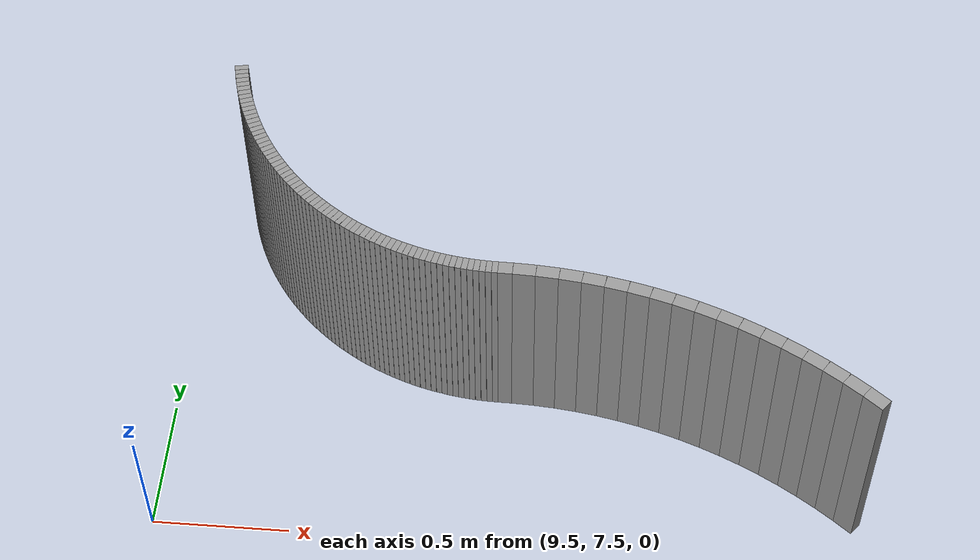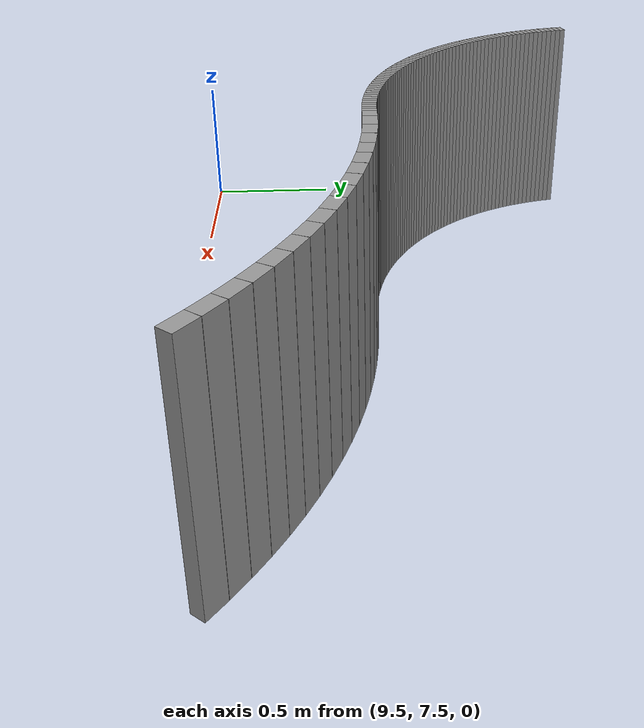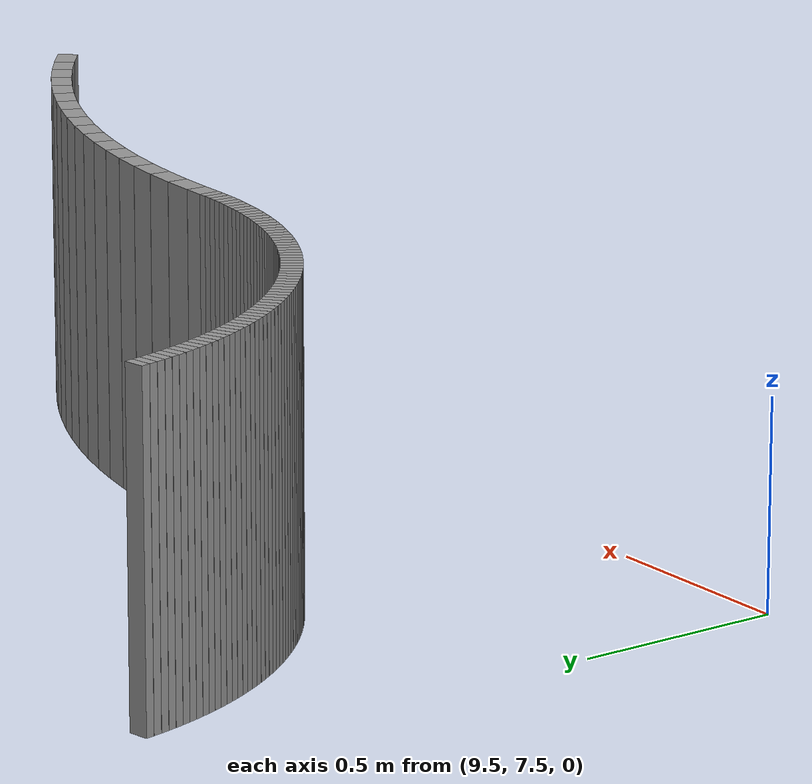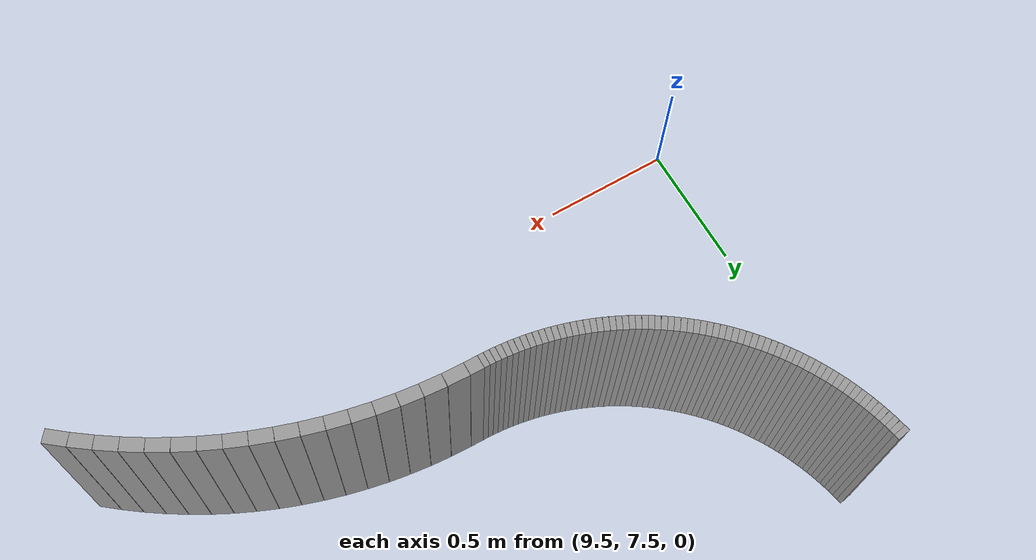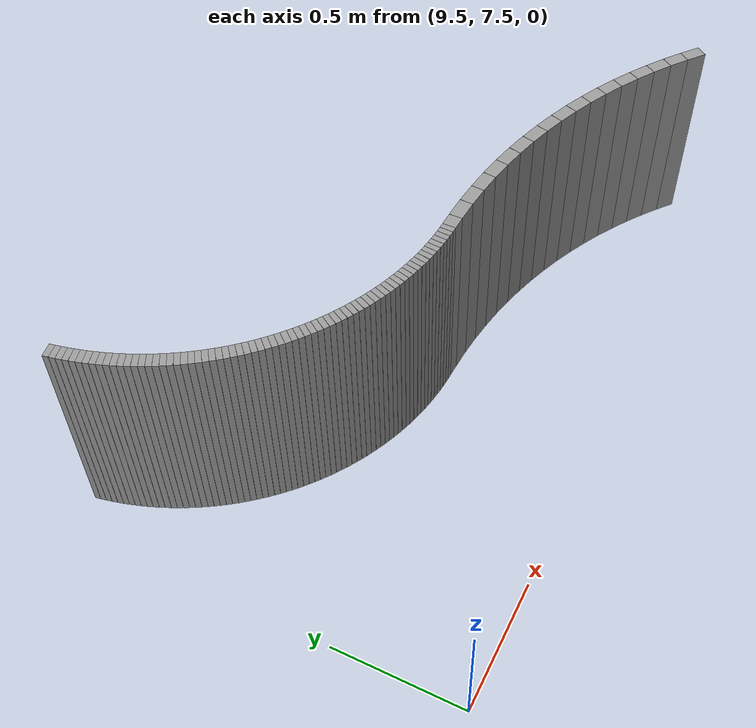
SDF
<sdf version="1.6">
 <model name="path_walls">
  <static>true</static>
  <model name="wall_right_120">
   <static>true</static>
   <pose>12.023175042588779 7.693194683425731 0.40 0 0 2.465553728133746</pose>
   <link name="wall_link">
    <visual name="wall_visual">
     <geometry><box><size>0.0825017934507149 0.05 0.8</size></box></geometry>
     <material><ambient>0.3 0.3 0.3 1</ambient><diffuse>0.6 0.6 0.6 1</diffuse></material>
    </visual>
    <collision name="wall_collision">
     <geometry><box><size>0.0825017934507149 0.05 0.8</size></box></geometry>
    </collision>
   </link>
  </model>
  <model name="wall_right_121">
   <static>true</static>
   <pose>11.957818199560503 7.743517027915231 0.40 0 0 2.5053207237488517</pose>
   <link name="wall_link">
    <visual name="wall_visual">
     <geometry><box><size>0.08250179345068452 0.05 0.8</size></box></geometry>
     <material><ambient>0.3 0.3 0.3 1</ambient><diffuse>0.6 0.6 0.6 1</diffuse></material>
    </visual>
    <collision name="wall_collision">
     <geometry><box><size>0.08250179345068452 0.05 0.8</size></box></geometry>
    </collision>
   </link>
  </model>
  <model name="wall_right_122">
   <static>true</static>
   <pose>11.890512386785137 7.7912012271031035 0.40 0 0 2.545087719363864</pose>
   <link name="wall_link">
    <visual name="wall_visual">
     <geometry><box><size>0.08250179345070106 0.05 0.8</size></box></geometry>
     <material><ambient>0.3 0.3 0.3 1</ambient><diffuse>0.6 0.6 0.6 1</diffuse></material>
    </visual>
    <collision name="wall_collision">
     <geometry><box><size>0.08250179345070106 0.05 0.8</size></box></geometry>
    </collision>
   </link>
  </model>
  <model name="wall_right_123">
   <static>true</static>
   <pose>11.82136402858707 7.836171882469172 0.40 0 0 2.5848547149789494</pose>
   <link name="wall_link">
    <visual name="wall_visual">
     <geometry><box><size>0.08250179345069344 0.05 0.8</size></box></geometry>
     <material><ambient>0.3 0.3 0.3 1</ambient><diffuse>0.6 0.6 0.6 1</diffuse></material>
    </visual>
    <collision name="wall_collision">
     <geometry><box><size>0.08250179345069344 0.05 0.8</size></box></geometry>
    </collision>
   </link>
  </model>
  <model name="wall_right_124">
   <static>true</static>
   <pose>11.750482462733737 7.878357886163791 0.40 0 0 2.624621710594005</pose>
   <link name="wall_link">
    <visual name="wall_visual">
     <geometry><box><size>0.08250179345070784 0.05 0.8</size></box></geometry>
     <material><ambient>0.3 0.3 0.3 1</ambient><diffuse>0.6 0.6 0.6 1</diffuse></material>
    </visual>
    <collision name="wall_collision">
     <geometry><box><size>0.08250179345070784 0.05 0.8</size></box></geometry>
    </collision>
   </link>
  </model>
  <model name="wall_right_125">
   <static>true</static>
   <pose>11.677979767550141 7.917692533443976 0.40 0 0 2.6643887062090825</pose>
   <link name="wall_link">
    <visual name="wall_visual">
     <geometry><box><size>0.08250179345068581 0.05 0.8</size></box></geometry>
     <material><ambient>0.3 0.3 0.3 1</ambient><diffuse>0.6 0.6 0.6 1</diffuse></material>
    </visual>
    <collision name="wall_collision">
     <geometry><box><size>0.08250179345068581 0.05 0.8</size></box></geometry>
    </collision>
   </link>
  </model>
  <model name="wall_right_126">
   <static>true</static>
   <pose>11.603970584699962 7.954113628147321 0.40 0 0 2.70415570182412</pose>
   <link name="wall_link">
    <visual name="wall_visual">
     <geometry><box><size>0.08250179345070074 0.05 0.8</size></box></geometry>
     <material><ambient>0.3 0.3 0.3 1</ambient><diffuse>0.6 0.6 0.6 1</diffuse></material>
    </visual>
    <collision name="wall_collision">
     <geometry><box><size>0.08250179345070074 0.05 0.8</size></box></geometry>
    </collision>
   </link>
  </model>
  <model name="wall_right_127">
   <static>true</static>
   <pose>11.528571937913528 7.987563581036917 0.40 0 0 2.743922697439188</pose>
   <link name="wall_link">
    <visual name="wall_visual">
     <geometry><box><size>0.0825017934506883 0.05 0.8</size></box></geometry>
     <material><ambient>0.3 0.3 0.3 1</ambient><diffuse>0.6 0.6 0.6 1</diffuse></material>
    </visual>
    <collision name="wall_collision">
     <geometry><box><size>0.0825017934506883 0.05 0.8</size></box></geometry>
    </collision>
   </link>
  </model>
  <model name="wall_right_128">
   <static>true</static>
   <pose>11.451903047949255 8.01798950086176 0.40 0 0 2.783689693054234</pose>
   <link name="wall_link">
    <visual name="wall_visual">
     <geometry><box><size>0.08250179345069675 0.05 0.8</size></box></geometry>
     <material><ambient>0.3 0.3 0.3 1</ambient><diffuse>0.6 0.6 0.6 1</diffuse></material>
    </visual>
    <collision name="wall_collision">
     <geometry><box><size>0.08250179345069675 0.05 0.8</size></box></geometry>
    </collision>
   </link>
  </model>
  <model name="wall_right_129">
   <static>true</static>
   <pose>11.374085144081107 8.0453432779887 0.40 0 0 2.823456688669296</pose>
   <link name="wall_link">
    <visual name="wall_visual">
     <geometry><box><size>0.0825017934507063 0.05 0.8</size></box></geometry>
     <material><ambient>0.3 0.3 0.3 1</ambient><diffuse>0.6 0.6 0.6 1</diffuse></material>
    </visual>
    <collision name="wall_collision">
     <geometry><box><size>0.0825017934507063 0.05 0.8</size></box></geometry>
    </collision>
   </link>
  </model>
  <model name="wall_right_130">
   <static>true</static>
   <pose>11.295241272410218 8.069581660473652 0.40 0 0 2.8632236842844057</pose>
   <link name="wall_link">
    <visual name="wall_visual">
     <geometry><box><size>0.08250179345069364 0.05 0.8</size></box></geometry>
     <material><ambient>0.3 0.3 0.3 1</ambient><diffuse>0.6 0.6 0.6 1</diffuse></material>
    </visual>
    <collision name="wall_collision">
     <geometry><box><size>0.08250179345069364 0.05 0.8</size></box></geometry>
    </collision>
   </link>
  </model>
  <model name="wall_right_131">
   <static>true</static>
   <pose>11.2154961013037 8.09066632245182 0.40 0 0 2.9029906798994016</pose>
   <link name="wall_link">
    <visual name="wall_visual">
     <geometry><box><size>0.08250179345069251 0.05 0.8</size></box></geometry>
     <material><ambient>0.3 0.3 0.3 1</ambient><diffuse>0.6 0.6 0.6 1</diffuse></material>
    </visual>
    <collision name="wall_collision">
     <geometry><box><size>0.08250179345069251 0.05 0.8</size></box></geometry>
    </collision>
   </link>
  </model>
  <model name="wall_right_132">
   <static>true</static>
   <pose>11.134975724268319 8.108563924738768 0.40 0 0 2.9427576755144966</pose>
   <link name="wall_link">
    <visual name="wall_visual">
     <geometry><box><size>0.08250179345069578 0.05 0.8</size></box></geometry>
     <material><ambient>0.3 0.3 0.3 1</ambient><diffuse>0.6 0.6 0.6 1</diffuse></material>
    </visual>
    <collision name="wall_collision">
     <geometry><box><size>0.08250179345069578 0.05 0.8</size></box></geometry>
    </collision>
   </link>
  </model>
  <model name="wall_right_133">
   <static>true</static>
   <pose>11.053807460570752 8.123246167546505 0.40 0 0 2.9825246711295414</pose>
   <link name="wall_link">
    <visual name="wall_visual">
     <geometry><box><size>0.08250179345071283 0.05 0.8</size></box></geometry>
     <material><ambient>0.3 0.3 0.3 1</ambient><diffuse>0.6 0.6 0.6 1</diffuse></material>
    </visual>
    <collision name="wall_collision">
     <geometry><box><size>0.08250179345071283 0.05 0.8</size></box></geometry>
    </collision>
   </link>
  </model>
  <model name="wall_right_134">
   <static>true</static>
   <pose>10.972119653919684 8.134689835231283 0.40 0 0 3.0222916667446276</pose>
   <link name="wall_link">
    <visual name="wall_visual">
     <geometry><box><size>0.08250179345068052 0.05 0.8</size></box></geometry>
     <material><ambient>0.3 0.3 0.3 1</ambient><diffuse>0.6 0.6 0.6 1</diffuse></material>
    </visual>
    <collision name="wall_collision">
     <geometry><box><size>0.08250179345068052 0.05 0.8</size></box></geometry>
    </collision>
   </link>
  </model>
  <model name="wall_right_135">
   <static>true</static>
   <pose>10.890041469527983 8.142876833002301 0.40 0 0 3.0620586623596813</pose>
   <link name="wall_link">
    <visual name="wall_visual">
     <geometry><box><size>0.08250179345069969 0.05 0.8</size></box></geometry>
     <material><ambient>0.3 0.3 0.3 1</ambient><diffuse>0.6 0.6 0.6 1</diffuse></material>
    </visual>
    <collision name="wall_collision">
     <geometry><box><size>0.08250179345069969 0.05 0.8</size></box></geometry>
    </collision>
   </link>
  </model>
  <model name="wall_right_136">
   <static>true</static>
   <pose>10.807702689875953 8.147794215533287 0.40 0 0 3.1018256579747105</pose>
   <link name="wall_link">
    <visual name="wall_visual">
     <geometry><box><size>0.08250179345068913 0.05 0.8</size></box></geometry>
     <material><ambient>0.3 0.3 0.3 1</ambient><diffuse>0.6 0.6 0.6 1</diffuse></material>
    </visual>
    <collision name="wall_collision">
     <geometry><box><size>0.08250179345068913 0.05 0.8</size></box></geometry>
    </collision>
   </link>
  </model>
  <model name="wall_right_137">
   <static>true</static>
   <pose>10.74051535586154 8.14986042202026 0.40 0 0 3.1251817213686626</pose>
   <link name="wall_link">
    <visual name="wall_visual">
     <geometry><box><size>0.0519450954604996 0.05 0.8</size></box></geometry>
     <material><ambient>0.3 0.3 0.3 1</ambient><diffuse>0.6 0.6 0.6 1</diffuse></material>
    </visual>
    <collision name="wall_collision">
     <geometry><box><size>0.0519450954604996 0.05 0.8</size></box></geometry>
    </collision>
   </link>
  </model>
  <model name="wall_right_138">
   <static>true</static>
   <pose>10.703861214041797 8.150499121604343 0.40 0 0 3.12170915578228</pose>
   <link name="wall_link">
    <visual name="wall_visual">
     <geometry><box><size>0.021374407998839783 0.05 0.8</size></box></geometry>
     <material><ambient>0.3 0.3 0.3 1</ambient><diffuse>0.6 0.6 0.6 1</diffuse></material>
    </visual>
    <collision name="wall_collision">
     <geometry><box><size>0.021374407998839783 0.05 0.8</size></box></geometry>
    </collision>
   </link>
  </model>
  <model name="wall_right_139">
   <static>true</static>
   <pose>10.682497367918135 8.151136492587021 0.40 0 0 3.1018256579747923</pose>
   <link name="wall_link">
    <visual name="wall_visual">
     <geometry><box><size>0.021374407998854546 0.05 0.8</size></box></geometry>
     <material><ambient>0.3 0.3 0.3 1</ambient><diffuse>0.6 0.6 0.6 1</diffuse></material>
    </visual>
    <collision name="wall_collision">
     <geometry><box><size>0.021374407998854546 0.05 0.8</size></box></geometry>
    </collision>
   </link>
  </model>
  <model name="wall_right_140">
   <static>true</static>
   <pose>10.661150417120353 8.152198497578308 0.40 0 0 3.08194216016719</pose>
   <link name="wall_link">
    <visual name="wall_visual">
     <geometry><box><size>0.021374407998811257 0.05 0.8</size></box></geometry>
     <material><ambient>0.3 0.3 0.3 1</ambient><diffuse>0.6 0.6 0.6 1</diffuse></material>
    </visual>
    <collision name="wall_collision">
     <geometry><box><size>0.021374407998811257 0.05 0.8</size></box></geometry>
    </collision>
   </link>
  </model>
  <model name="wall_right_141">
   <static>true</static>
   <pose>10.63982880096177 8.153684716724664 0.40 0 0 3.0620586623596386</pose>
   <link name="wall_link">
    <visual name="wall_visual">
     <geometry><box><size>0.021374407998885216 0.05 0.8</size></box></geometry>
     <material><ambient>0.3 0.3 0.3 1</ambient><diffuse>0.6 0.6 0.6 1</diffuse></material>
    </visual>
    <collision name="wall_collision">
     <geometry><box><size>0.021374407998885216 0.05 0.8</size></box></geometry>
    </collision>
   </link>
  </model>
  <model name="wall_right_142">
   <static>true</static>
   <pose>10.618540948739929 8.155594562463527 0.40 0 0 3.042175164552154</pose>
   <link name="wall_link">
    <visual name="wall_visual">
     <geometry><box><size>0.021374407998814873 0.05 0.8</size></box></geometry>
     <material><ambient>0.3 0.3 0.3 1</ambient><diffuse>0.6 0.6 0.6 1</diffuse></material>
    </visual>
    <collision name="wall_collision">
     <geometry><box><size>0.021374407998814873 0.05 0.8</size></box></geometry>
    </collision>
   </link>
  </model>
  <model name="wall_right_143">
   <static>true</static>
   <pose>10.597295276404125 8.157927279755604 0.40 0 0 3.0222916667446</pose>
   <link name="wall_link">
    <visual name="wall_visual">
     <geometry><box><size>0.02137440799888237 0.05 0.8</size></box></geometry>
     <material><ambient>0.3 0.3 0.3 1</ambient><diffuse>0.6 0.6 0.6 1</diffuse></material>
    </visual>
    <collision name="wall_collision">
     <geometry><box><size>0.02137440799888237 0.05 0.8</size></box></geometry>
    </collision>
   </link>
  </model>
  <model name="wall_right_144">
   <static>true</static>
   <pose>10.576100183228228 8.16068194638337 0.40 0 0 3.0024081689371256</pose>
   <link name="wall_link">
    <visual name="wall_visual">
     <geometry><box><size>0.021374407998817777 0.05 0.8</size></box></geometry>
     <material><ambient>0.3 0.3 0.3 1</ambient><diffuse>0.6 0.6 0.6 1</diffuse></material>
    </visual>
    <collision name="wall_collision">
     <geometry><box><size>0.021374407998817777 0.05 0.8</size></box></geometry>
    </collision>
   </link>
  </model>
  <model name="wall_right_145">
   <static>true</static>
   <pose>10.554964048490124 8.163857473315652 0.40 0 0 2.9825246711295326</pose>
   <link name="wall_link">
    <visual name="wall_visual">
     <geometry><box><size>0.021374407998867813 0.05 0.8</size></box></geometry>
     <material><ambient>0.3 0.3 0.3 1</ambient><diffuse>0.6 0.6 0.6 1</diffuse></material>
    </visual>
    <collision name="wall_collision">
     <geometry><box><size>0.021374407998867813 0.05 0.8</size></box></geometry>
    </collision>
   </link>
  </model>
  <model name="wall_right_146">
   <static>true</static>
   <pose>10.533895228159025 8.167452605138172 0.40 0 0 2.96264117332208</pose>
   <link name="wall_link">
    <visual name="wall_visual">
     <geometry><box><size>0.021374407998845074 0.05 0.8</size></box></geometry>
     <material><ambient>0.3 0.3 0.3 1</ambient><diffuse>0.6 0.6 0.6 1</diffuse></material>
    </visual>
    <collision name="wall_collision">
     <geometry><box><size>0.021374407998845074 0.05 0.8</size></box></geometry>
    </collision>
   </link>
  </model>
  <model name="wall_right_147">
   <static>true</static>
   <pose>10.512902051592086 8.17146592054986 0.40 0 0 2.9427576755144305</pose>
   <link name="wall_link">
    <visual name="wall_visual">
     <geometry><box><size>0.02137440799882313 0.05 0.8</size></box></geometry>
     <material><ambient>0.3 0.3 0.3 1</ambient><diffuse>0.6 0.6 0.6 1</diffuse></material>
    </visual>
    <collision name="wall_collision">
     <geometry><box><size>0.02137440799882313 0.05 0.8</size></box></geometry>
    </collision>
   </link>
  </model>
  <model name="wall_right_148">
   <static>true</static>
   <pose>10.49199281824135 8.175895832924759 0.40 0 0 2.9228741777069884</pose>
   <link name="wall_link">
    <visual name="wall_visual">
     <geometry><box><size>0.021374407998859198 0.05 0.8</size></box></geometry>
     <material><ambient>0.3 0.3 0.3 1</ambient><diffuse>0.6 0.6 0.6 1</diffuse></material>
    </visual>
    <collision name="wall_collision">
     <geometry><box><size>0.021374407998859198 0.05 0.8</size></box></geometry>
    </collision>
   </link>
  </model>
  <model name="wall_right_149">
   <static>true</static>
   <pose>10.471175794372748 8.180740590939273 0.40 0 0 2.9029906798993848</pose>
   <link name="wall_link">
    <visual name="wall_visual">
     <geometry><box><size>0.02137440799884378 0.05 0.8</size></box></geometry>
     <material><ambient>0.3 0.3 0.3 1</ambient><diffuse>0.6 0.6 0.6 1</diffuse></material>
    </visual>
    <collision name="wall_collision">
     <geometry><box><size>0.02137440799884378 0.05 0.8</size></box></geometry>
    </collision>
   </link>
  </model>
  <model name="wall_right_150">
   <static>true</static>
   <pose>10.450459209798083 8.185998279264542 0.40 0 0 2.883107182091873</pose>
   <link name="wall_link">
    <visual name="wall_visual">
     <geometry><box><size>0.021374407998843697 0.05 0.8</size></box></geometry>
     <material><ambient>0.3 0.3 0.3 1</ambient><diffuse>0.6 0.6 0.6 1</diffuse></material>
    </visual>
    <collision name="wall_collision">
     <geometry><box><size>0.021374407998843697 0.05 0.8</size></box></geometry>
    </collision>
   </link>
  </model>
  <model name="wall_right_151">
   <static>true</static>
   <pose>10.429851254621406 8.191666819323643 0.40 0 0 2.863223684284431</pose>
   <link name="wall_link">
    <visual name="wall_visual">
     <geometry><box><size>0.021374407998875994 0.05 0.8</size></box></geometry>
     <material><ambient>0.3 0.3 0.3 1</ambient><diffuse>0.6 0.6 0.6 1</diffuse></material>
    </visual>
    <collision name="wall_collision">
     <geometry><box><size>0.021374407998875994 0.05 0.8</size></box></geometry>
    </collision>
   </link>
  </model>
  <model name="wall_right_152">
   <static>true</static>
   <pose>10.409360076001228 8.19774397011334 0.40 0 0 2.843340186476775</pose>
   <link name="wall_link">
    <visual name="wall_visual">
     <geometry><box><size>0.021374407998803992 0.05 0.8</size></box></geometry>
     <material><ambient>0.3 0.3 0.3 1</ambient><diffuse>0.6 0.6 0.6 1</diffuse></material>
    </visual>
    <collision name="wall_collision">
     <geometry><box><size>0.021374407998803992 0.05 0.8</size></box></geometry>
    </collision>
   </link>
  </model>
  <model name="wall_right_153">
   <static>true</static>
   <pose>10.388993774929517 8.204227329090047 0.40 0 0 2.823456688669327</pose>
   <link name="wall_link">
    <visual name="wall_visual">
     <geometry><box><size>0.021374407998861554 0.05 0.8</size></box></geometry>
     <material><ambient>0.3 0.3 0.3 1</ambient><diffuse>0.6 0.6 0.6 1</diffuse></material>
    </visual>
    <collision name="wall_collision">
     <geometry><box><size>0.021374407998861554 0.05 0.8</size></box></geometry>
    </collision>
   </link>
  </model>
  <model name="wall_right_154">
   <static>true</static>
   <pose>10.368760403029071 8.211114333119653 0.40 0 0 2.8035731908617976</pose>
   <link name="wall_link">
    <visual name="wall_visual">
     <geometry><box><size>0.02137440799886103 0.05 0.8</size></box></geometry>
     <material><ambient>0.3 0.3 0.3 1</ambient><diffuse>0.6 0.6 0.6 1</diffuse></material>
    </visual>
    <collision name="wall_collision">
     <geometry><box><size>0.02137440799886103 0.05 0.8</size></box></geometry>
    </collision>
   </link>
  </model>
  <model name="wall_right_155">
   <static>true</static>
   <pose>10.348667959370477 8.218402259490807 0.40 0 0 2.783689693054252</pose>
   <link name="wall_link">
    <visual name="wall_visual">
     <geometry><box><size>0.02137440799883912 0.05 0.8</size></box></geometry>
     <material><ambient>0.3 0.3 0.3 1</ambient><diffuse>0.6 0.6 0.6 1</diffuse></material>
    </visual>
    <collision name="wall_collision">
     <geometry><box><size>0.02137440799883912 0.05 0.8</size></box></geometry>
    </collision>
   </link>
  </model>
  <model name="wall_right_156">
   <static>true</static>
   <pose>10.328724387309649 8.226088226991347 0.40 0 0 2.7638061952467075</pose>
   <link name="wall_link">
    <visual name="wall_visual">
     <geometry><box><size>0.021374407998843728 0.05 0.8</size></box></geometry>
     <material><ambient>0.3 0.3 0.3 1</ambient><diffuse>0.6 0.6 0.6 1</diffuse></material>
    </visual>
    <collision name="wall_collision">
     <geometry><box><size>0.021374407998843728 0.05 0.8</size></box></geometry>
    </collision>
   </link>
  </model>
  <model name="wall_right_157">
   <static>true</static>
   <pose>10.308937571347526 8.23416919704735 0.40 0 0 2.743922697439185</pose>
   <link name="wall_link">
    <visual name="wall_visual">
     <geometry><box><size>0.02137440799884632 0.05 0.8</size></box></geometry>
     <material><ambient>0.3 0.3 0.3 1</ambient><diffuse>0.6 0.6 0.6 1</diffuse></material>
    </visual>
    <collision name="wall_collision">
     <geometry><box><size>0.02137440799884632 0.05 0.8</size></box></geometry>
    </collision>
   </link>
  </model>
  <model name="wall_right_158">
   <static>true</static>
   <pose>10.289315334013029 8.2426419749244 0.40 0 0 2.724039199631677</pose>
   <link name="wall_link">
    <visual name="wall_visual">
     <geometry><box><size>0.02137440799885527 0.05 0.8</size></box></geometry>
     <material><ambient>0.3 0.3 0.3 1</ambient><diffuse>0.6 0.6 0.6 1</diffuse></material>
    </visual>
    <collision name="wall_collision">
     <geometry><box><size>0.02137440799885527 0.05 0.8</size></box></geometry>
    </collision>
   </link>
  </model>
  <model name="wall_right_159">
   <static>true</static>
   <pose>10.269865432770496 8.251503210990588 0.40 0 0 2.7041557018241087</pose>
   <link name="wall_link">
    <visual name="wall_visual">
     <geometry><box><size>0.021374407998837153 0.05 0.8</size></box></geometry>
     <material><ambient>0.3 0.3 0.3 1</ambient><diffuse>0.6 0.6 0.6 1</diffuse></material>
    </visual>
    <collision name="wall_collision">
     <geometry><box><size>0.021374407998837153 0.05 0.8</size></box></geometry>
    </collision>
   </link>
  </model>
  <model name="wall_right_160">
   <static>true</static>
   <pose>10.250595556952831 8.260749402040776 0.40 0 0 2.684272204016641</pose>
   <link name="wall_link">
    <visual name="wall_visual">
     <geometry><box><size>0.021374407998848967 0.05 0.8</size></box></geometry>
     <material><ambient>0.3 0.3 0.3 1</ambient><diffuse>0.6 0.6 0.6 1</diffuse></material>
    </visual>
    <collision name="wall_collision">
     <geometry><box><size>0.021374407998848967 0.05 0.8</size></box></geometry>
    </collision>
   </link>
  </model>
  <model name="wall_right_161">
   <static>true</static>
   <pose>10.231513324721593 8.270376892681544 0.40 0 0 2.6643887062089964</pose>
   <link name="wall_link">
    <visual name="wall_visual">
     <geometry><box><size>0.021374407998841334 0.05 0.8</size></box></geometry>
     <material><ambient>0.3 0.3 0.3 1</ambient><diffuse>0.6 0.6 0.6 1</diffuse></material>
    </visual>
    <collision name="wall_collision">
     <geometry><box><size>0.021374407998841334 0.05 0.8</size></box></geometry>
    </collision>
   </link>
  </model>
  <model name="wall_right_162">
   <static>true</static>
   <pose>10.212626280055254 8.280381876776314 0.40 0 0 2.644505208401548</pose>
   <link name="wall_link">
    <visual name="wall_visual">
     <geometry><box><size>0.021374407998848453 0.05 0.8</size></box></geometry>
     <material><ambient>0.3 0.3 0.3 1</ambient><diffuse>0.6 0.6 0.6 1</diffuse></material>
    </visual>
    <collision name="wall_collision">
     <geometry><box><size>0.021374407998848453 0.05 0.8</size></box></geometry>
    </collision>
   </link>
  </model>
  <model name="wall_right_163">
   <static>true</static>
   <pose>10.19394188976673 8.290760398950074 0.40 0 0 2.624621710593953</pose>
   <link name="wall_link">
    <visual name="wall_visual">
     <geometry><box><size>0.02137440799884935 0.05 0.8</size></box></geometry>
     <material><ambient>0.3 0.3 0.3 1</ambient><diffuse>0.6 0.6 0.6 1</diffuse></material>
    </visual>
    <collision name="wall_collision">
     <geometry><box><size>0.02137440799884935 0.05 0.8</size></box></geometry>
    </collision>
   </link>
  </model>
  <model name="wall_right_164">
   <static>true</static>
   <pose>10.17546754055147 8.301508356153095 0.40 0 0 2.604738212786524</pose>
   <link name="wall_link">
    <visual name="wall_visual">
     <geometry><box><size>0.02137440799885834 0.05 0.8</size></box></geometry>
     <material><ambient>0.3 0.3 0.3 1</ambient><diffuse>0.6 0.6 0.6 1</diffuse></material>
    </visual>
    <collision name="wall_collision">
     <geometry><box><size>0.02137440799885834 0.05 0.8</size></box></geometry>
    </collision>
   </link>
  </model>
  <model name="wall_right_165">
   <static>true</static>
   <pose>10.157210536067199 8.31262149928303 0.40 0 0 2.5848547149790226</pose>
   <link name="wall_link">
    <visual name="wall_visual">
     <geometry><box><size>0.02137440799884019 0.05 0.8</size></box></geometry>
     <material><ambient>0.3 0.3 0.3 1</ambient><diffuse>0.6 0.6 0.6 1</diffuse></material>
    </visual>
    <collision name="wall_collision">
     <geometry><box><size>0.02137440799884019 0.05 0.8</size></box></geometry>
    </collision>
   </link>
  </model>
  <model name="wall_right_166">
   <static>true</static>
   <pose>10.139178094046468 8.32409543486476 0.40 0 0 2.5649712171713364</pose>
   <link name="wall_link">
    <visual name="wall_visual">
     <geometry><box><size>0.02137440799883817 0.05 0.8</size></box></geometry>
     <material><ambient>0.3 0.3 0.3 1</ambient><diffuse>0.6 0.6 0.6 1</diffuse></material>
    </visual>
    <collision name="wall_collision">
     <geometry><box><size>0.02137440799883817 0.05 0.8</size></box></geometry>
    </collision>
   </link>
  </model>
  <model name="wall_right_167">
   <static>true</static>
   <pose>10.121377343443188 8.335925626787324 0.40 0 0 2.5450877193638313</pose>
   <link name="wall_link">
    <visual name="wall_visual">
     <geometry><box><size>0.021374407998852818 0.05 0.8</size></box></geometry>
     <material><ambient>0.3 0.3 0.3 1</ambient><diffuse>0.6 0.6 0.6 1</diffuse></material>
    </visual>
    <collision name="wall_collision">
     <geometry><box><size>0.021374407998852818 0.05 0.8</size></box></geometry>
    </collision>
   </link>
  </model>
  <model name="wall_right_168">
   <static>true</static>
   <pose>10.103815321614288 8.348107398097206 0.40 0 0 2.5252042215563955</pose>
   <link name="wall_link">
    <visual name="wall_visual">
     <geometry><box><size>0.021374407998839374 0.05 0.8</size></box></geometry>
     <material><ambient>0.3 0.3 0.3 1</ambient><diffuse>0.6 0.6 0.6 1</diffuse></material>
    </visual>
    <collision name="wall_collision">
     <geometry><box><size>0.021374407998839374 0.05 0.8</size></box></geometry>
    </collision>
   </link>
  </model>
  <model name="wall_right_169">
   <static>true</static>
   <pose>10.086498971537555 8.36063593284733 0.40 0 0 2.5053207237488873</pose>
   <link name="wall_link">
    <visual name="wall_visual">
     <geometry><box><size>0.02137440799886004 0.05 0.8</size></box></geometry>
     <material><ambient>0.3 0.3 0.3 1</ambient><diffuse>0.6 0.6 0.6 1</diffuse></material>
    </visual>
    <collision name="wall_collision">
     <geometry><box><size>0.02137440799886004 0.05 0.8</size></box></geometry>
    </collision>
   </link>
  </model>
  <model name="wall_right_170">
   <static>true</static>
   <pose>10.069435139066801 8.373506278001008 0.40 0 0 2.485437225941187</pose>
   <link name="wall_link">
    <visual name="wall_visual">
     <geometry><box><size>0.021374407998820465 0.05 0.8</size></box></geometry>
     <material><ambient>0.3 0.3 0.3 1</ambient><diffuse>0.6 0.6 0.6 1</diffuse></material>
    </visual>
    <collision name="wall_collision">
     <geometry><box><size>0.021374407998820465 0.05 0.8</size></box></geometry>
    </collision>
   </link>
  </model>
  <model name="wall_right_171">
   <static>true</static>
   <pose>10.052630570225393 8.386713345390069 0.40 0 0 2.465553728133885</pose>
   <link name="wall_link">
    <visual name="wall_visual">
     <geometry><box><size>0.02137440799886468 0.05 0.8</size></box></geometry>
     <material><ambient>0.3 0.3 0.3 1</ambient><diffuse>0.6 0.6 0.6 1</diffuse></material>
    </visual>
    <collision name="wall_collision">
     <geometry><box><size>0.02137440799886468 0.05 0.8</size></box></geometry>
    </collision>
   </link>
  </model>
  <model name="wall_right_172">
   <static>true</static>
   <pose>10.036091908539285 8.400251913726432 0.40 0 0 2.4456702303261606</pose>
   <link name="wall_link">
    <visual name="wall_visual">
     <geometry><box><size>0.021374407998870415 0.05 0.8</size></box></geometry>
     <material><ambient>0.3 0.3 0.3 1</ambient><diffuse>0.6 0.6 0.6 1</diffuse></material>
    </visual>
    <collision name="wall_collision">
     <geometry><box><size>0.021374407998870415 0.05 0.8</size></box></geometry>
    </collision>
   </link>
  </model>
  <model name="wall_right_173">
   <static>true</static>
   <pose>10.019825692410642 8.414116630666232 0.40 0 0 2.4257867325187186</pose>
   <link name="wall_link">
    <visual name="wall_visual">
     <geometry><box><size>0.021374407998799225 0.05 0.8</size></box></geometry>
     <material><ambient>0.3 0.3 0.3 1</ambient><diffuse>0.6 0.6 0.6 1</diffuse></material>
    </visual>
    <collision name="wall_collision">
     <geometry><box><size>0.021374407998799225 0.05 0.8</size></box></geometry>
    </collision>
   </link>
  </model>
  <model name="wall_right_174">
   <static>true</static>
   <pose>10.003838352532794 8.428302014925926 0.40 0 0 2.4059032347111073</pose>
   <link name="wall_link">
    <visual name="wall_visual">
     <geometry><box><size>0.02137440799889348 0.05 0.8</size></box></geometry>
     <material><ambient>0.3 0.3 0.3 1</ambient><diffuse>0.6 0.6 0.6 1</diffuse></material>
    </visual>
    <collision name="wall_collision">
     <geometry><box><size>0.02137440799889348 0.05 0.8</size></box></geometry>
    </collision>
   </link>
  </model>
  <model name="wall_right_175">
   <static>true</static>
   <pose>9.988136209348038 8.442802458449174 0.40 0 0 2.386019736903734</pose>
   <link name="wall_link">
    <visual name="wall_visual">
     <geometry><box><size>0.021374407998823754 0.05 0.8</size></box></geometry>
     <material><ambient>0.3 0.3 0.3 1</ambient><diffuse>0.6 0.6 0.6 1</diffuse></material>
    </visual>
    <collision name="wall_collision">
     <geometry><box><size>0.021374407998823754 0.05 0.8</size></box></geometry>
    </collision>
   </link>
  </model>
  <model name="wall_right_176">
   <static>true</static>
   <pose>9.972725470548907 8.457612228623944 0.40 0 0 2.3661362390961247</pose>
   <link name="wall_link">
    <visual name="wall_visual">
     <geometry><box><size>0.021374407998847423 0.05 0.8</size></box></geometry>
     <material><ambient>0.3 0.3 0.3 1</ambient><diffuse>0.6 0.6 0.6 1</diffuse></material>
    </visual>
    <collision name="wall_collision">
     <geometry><box><size>0.021374407998847423 0.05 0.8</size></box></geometry>
    </collision>
   </link>
  </model>
  <model name="wall_right_177">
   <static>true</static>
   <pose>9.957612228623944 8.472725470548909 0.40 0 0 2.3462527412884464</pose>
   <link name="wall_link">
    <visual name="wall_visual">
     <geometry><box><size>0.021374407998844935 0.05 0.8</size></box></geometry>
     <material><ambient>0.3 0.3 0.3 1</ambient><diffuse>0.6 0.6 0.6 1</diffuse></material>
    </visual>
    <collision name="wall_collision">
     <geometry><box><size>0.021374407998844935 0.05 0.8</size></box></geometry>
    </collision>
   </link>
  </model>
  <model name="wall_right_178">
   <static>true</static>
   <pose>9.942802458449176 8.488136209348038 0.40 0 0 2.3263692434810697</pose>
   <link name="wall_link">
    <visual name="wall_visual">
     <geometry><box><size>0.02137440799882117 0.05 0.8</size></box></geometry>
     <material><ambient>0.3 0.3 0.3 1</ambient><diffuse>0.6 0.6 0.6 1</diffuse></material>
    </visual>
    <collision name="wall_collision">
     <geometry><box><size>0.02137440799882117 0.05 0.8</size></box></geometry>
    </collision>
   </link>
  </model>
  <model name="wall_right_179">
   <static>true</static>
   <pose>9.928302014925933 8.503838352532787 0.40 0 0 2.306485745673609</pose>
   <link name="wall_link">
    <visual name="wall_visual">
     <geometry><box><size>0.021374407998879616 0.05 0.8</size></box></geometry>
     <material><ambient>0.3 0.3 0.3 1</ambient><diffuse>0.6 0.6 0.6 1</diffuse></material>
    </visual>
    <collision name="wall_collision">
     <geometry><box><size>0.021374407998879616 0.05 0.8</size></box></geometry>
    </collision>
   </link>
  </model>
  <model name="wall_right_180">
   <static>true</static>
   <pose>9.91411663066623 8.519825692410645 0.40 0 0 2.286602247865985</pose>
   <link name="wall_link">
    <visual name="wall_visual">
     <geometry><box><size>0.021374407998839495 0.05 0.8</size></box></geometry>
     <material><ambient>0.3 0.3 0.3 1</ambient><diffuse>0.6 0.6 0.6 1</diffuse></material>
    </visual>
    <collision name="wall_collision">
     <geometry><box><size>0.021374407998839495 0.05 0.8</size></box></geometry>
    </collision>
   </link>
  </model>
  <model name="wall_right_181">
   <static>true</static>
   <pose>9.900251913726418 8.536091908539303 0.40 0 0 2.2667187500584016</pose>
   <link name="wall_link">
    <visual name="wall_visual">
     <geometry><box><size>0.02137440799886814 0.05 0.8</size></box></geometry>
     <material><ambient>0.3 0.3 0.3 1</ambient><diffuse>0.6 0.6 0.6 1</diffuse></material>
    </visual>
    <collision name="wall_collision">
     <geometry><box><size>0.02137440799886814 0.05 0.8</size></box></geometry>
    </collision>
   </link>
  </model>
  <model name="wall_right_182">
   <static>true</static>
   <pose>9.88671334539007 8.55263057022539 0.40 0 0 2.2468352522509507</pose>
   <link name="wall_link">
    <visual name="wall_visual">
     <geometry><box><size>0.021374407998812527 0.05 0.8</size></box></geometry>
     <material><ambient>0.3 0.3 0.3 1</ambient><diffuse>0.6 0.6 0.6 1</diffuse></material>
    </visual>
    <collision name="wall_collision">
     <geometry><box><size>0.021374407998812527 0.05 0.8</size></box></geometry>
    </collision>
   </link>
  </model>
  <model name="wall_right_183">
   <static>true</static>
   <pose>9.87350627800102 8.569435139066783 0.40 0 0 2.226951754443391</pose>
   <link name="wall_link">
    <visual name="wall_visual">
     <geometry><box><size>0.021374407998841043 0.05 0.8</size></box></geometry>
     <material><ambient>0.3 0.3 0.3 1</ambient><diffuse>0.6 0.6 0.6 1</diffuse></material>
    </visual>
    <collision name="wall_collision">
     <geometry><box><size>0.021374407998841043 0.05 0.8</size></box></geometry>
    </collision>
   </link>
  </model>
  <model name="wall_right_184">
   <static>true</static>
   <pose>9.860635932847334 8.586498971537551 0.40 0 0 2.20706825663589</pose>
   <link name="wall_link">
    <visual name="wall_visual">
     <geometry><box><size>0.021374407998872462 0.05 0.8</size></box></geometry>
     <material><ambient>0.3 0.3 0.3 1</ambient><diffuse>0.6 0.6 0.6 1</diffuse></material>
    </visual>
    <collision name="wall_collision">
     <geometry><box><size>0.021374407998872462 0.05 0.8</size></box></geometry>
    </collision>
   </link>
  </model>
  <model name="wall_right_185">
   <static>true</static>
   <pose>9.848107398097198 8.603815321614295 0.40 0 0 2.1871847588282773</pose>
   <link name="wall_link">
    <visual name="wall_visual">
     <geometry><box><size>0.02137440799885218 0.05 0.8</size></box></geometry>
     <material><ambient>0.3 0.3 0.3 1</ambient><diffuse>0.6 0.6 0.6 1</diffuse></material>
    </visual>
    <collision name="wall_collision">
     <geometry><box><size>0.02137440799885218 0.05 0.8</size></box></geometry>
    </collision>
   </link>
  </model>
  <model name="wall_right_186">
   <static>true</static>
   <pose>9.835925626787322 8.621377343443193 0.40 0 0 2.1673012610207976</pose>
   <link name="wall_link">
    <visual name="wall_visual">
     <geometry><box><size>0.021374407998832605 0.05 0.8</size></box></geometry>
     <material><ambient>0.3 0.3 0.3 1</ambient><diffuse>0.6 0.6 0.6 1</diffuse></material>
    </visual>
    <collision name="wall_collision">
     <geometry><box><size>0.021374407998832605 0.05 0.8</size></box></geometry>
    </collision>
   </link>
  </model>
  <model name="wall_right_187">
   <static>true</static>
   <pose>9.824095434864766 8.639178094046459 0.40 0 0 2.1474177632133227</pose>
   <link name="wall_link">
    <visual name="wall_visual">
     <geometry><box><size>0.021374407998822904 0.05 0.8</size></box></geometry>
     <material><ambient>0.3 0.3 0.3 1</ambient><diffuse>0.6 0.6 0.6 1</diffuse></material>
    </visual>
    <collision name="wall_collision">
     <geometry><box><size>0.021374407998822904 0.05 0.8</size></box></geometry>
    </collision>
   </link>
  </model>
  <model name="wall_right_188">
   <static>true</static>
   <pose>9.812621499283033 8.657210536067197 0.40 0 0 2.12753426540567</pose>
   <link name="wall_link">
    <visual name="wall_visual">
     <geometry><box><size>0.021374407998873707 0.05 0.8</size></box></geometry>
     <material><ambient>0.3 0.3 0.3 1</ambient><diffuse>0.6 0.6 0.6 1</diffuse></material>
    </visual>
    <collision name="wall_collision">
     <geometry><box><size>0.021374407998873707 0.05 0.8</size></box></geometry>
    </collision>
   </link>
  </model>
  <model name="wall_right_189">
   <static>true</static>
   <pose>9.80150835615309 8.675467540551484 0.40 0 0 2.107650767598237</pose>
   <link name="wall_link">
    <visual name="wall_visual">
     <geometry><box><size>0.021374407998859247 0.05 0.8</size></box></geometry>
     <material><ambient>0.3 0.3 0.3 1</ambient><diffuse>0.6 0.6 0.6 1</diffuse></material>
    </visual>
    <collision name="wall_collision">
     <geometry><box><size>0.021374407998859247 0.05 0.8</size></box></geometry>
    </collision>
   </link>
  </model>
  <model name="wall_right_190">
   <static>true</static>
   <pose>9.790760398950074 8.69394188976673 0.40 0 0 2.087767269790765</pose>
   <link name="wall_link">
    <visual name="wall_visual">
     <geometry><box><size>0.02137440799882313 0.05 0.8</size></box></geometry>
     <material><ambient>0.3 0.3 0.3 1</ambient><diffuse>0.6 0.6 0.6 1</diffuse></material>
    </visual>
    <collision name="wall_collision">
     <geometry><box><size>0.02137440799882313 0.05 0.8</size></box></geometry>
    </collision>
   </link>
  </model>
  <model name="wall_right_191">
   <static>true</static>
   <pose>9.780381876776318 8.712626280055247 0.40 0 0 2.0678837719830896</pose>
   <link name="wall_link">
    <visual name="wall_visual">
     <geometry><box><size>0.021374407998857956 0.05 0.8</size></box></geometry>
     <material><ambient>0.3 0.3 0.3 1</ambient><diffuse>0.6 0.6 0.6 1</diffuse></material>
    </visual>
    <collision name="wall_collision">
     <geometry><box><size>0.021374407998857956 0.05 0.8</size></box></geometry>
    </collision>
   </link>
  </model>
  <model name="wall_right_192">
   <static>true</static>
   <pose>9.770376892681544 8.7315133247216 0.40 0 0 2.0480002741755334</pose>
   <link name="wall_link">
    <visual name="wall_visual">
     <geometry><box><size>0.021374407998859563 0.05 0.8</size></box></geometry>
     <material><ambient>0.3 0.3 0.3 1</ambient><diffuse>0.6 0.6 0.6 1</diffuse></material>
    </visual>
    <collision name="wall_collision">
     <geometry><box><size>0.021374407998859563 0.05 0.8</size></box></geometry>
    </collision>
   </link>
  </model>
  <model name="wall_right_193">
   <static>true</static>
   <pose>9.76074940204078 8.750595556952828 0.40 0 0 2.0281167763681482</pose>
   <link name="wall_link">
    <visual name="wall_visual">
     <geometry><box><size>0.021374407998808433 0.05 0.8</size></box></geometry>
     <material><ambient>0.3 0.3 0.3 1</ambient><diffuse>0.6 0.6 0.6 1</diffuse></material>
    </visual>
    <collision name="wall_collision">
     <geometry><box><size>0.021374407998808433 0.05 0.8</size></box></geometry>
    </collision>
   </link>
  </model>
  <model name="wall_right_194">
   <static>true</static>
   <pose>9.751503210990588 8.769865432770498 0.40 0 0 2.008233278560609</pose>
   <link name="wall_link">
    <visual name="wall_visual">
     <geometry><box><size>0.021374407998890385 0.05 0.8</size></box></geometry>
     <material><ambient>0.3 0.3 0.3 1</ambient><diffuse>0.6 0.6 0.6 1</diffuse></material>
    </visual>
    <collision name="wall_collision">
     <geometry><box><size>0.021374407998890385 0.05 0.8</size></box></geometry>
    </collision>
   </link>
  </model>
  <model name="wall_right_195">
   <static>true</static>
   <pose>9.742641974924394 8.78931533401304 0.40 0 0 1.9883497807530206</pose>
   <link name="wall_link">
    <visual name="wall_visual">
     <geometry><box><size>0.02137440799882425 0.05 0.8</size></box></geometry>
     <material><ambient>0.3 0.3 0.3 1</ambient><diffuse>0.6 0.6 0.6 1</diffuse></material>
    </visual>
    <collision name="wall_collision">
     <geometry><box><size>0.02137440799882425 0.05 0.8</size></box></geometry>
    </collision>
   </link>
  </model>
  <model name="wall_right_196">
   <static>true</static>
   <pose>9.73416919704735 8.808937571347524 0.40 0 0 1.968466282945626</pose>
   <link name="wall_link">
    <visual name="wall_visual">
     <geometry><box><size>0.02137440799884933 0.05 0.8</size></box></geometry>
     <material><ambient>0.3 0.3 0.3 1</ambient><diffuse>0.6 0.6 0.6 1</diffuse></material>
    </visual>
    <collision name="wall_collision">
     <geometry><box><size>0.02137440799884933 0.05 0.8</size></box></geometry>
    </collision>
   </link>
  </model>
  <model name="wall_right_197">
   <static>true</static>
   <pose>9.726088226991346 8.828724387309649 0.40 0 0 1.9485827851379052</pose>
   <link name="wall_link">
    <visual name="wall_visual">
     <geometry><box><size>0.021374407998843072 0.05 0.8</size></box></geometry>
     <material><ambient>0.3 0.3 0.3 1</ambient><diffuse>0.6 0.6 0.6 1</diffuse></material>
    </visual>
    <collision name="wall_collision">
     <geometry><box><size>0.021374407998843072 0.05 0.8</size></box></geometry>
    </collision>
   </link>
  </model>
  <model name="wall_right_198">
   <static>true</static>
   <pose>9.718402259490801 8.848667959370488 0.40 0 0 1.9286992873304194</pose>
   <link name="wall_link">
    <visual name="wall_visual">
     <geometry><box><size>0.021374407998865527 0.05 0.8</size></box></geometry>
     <material><ambient>0.3 0.3 0.3 1</ambient><diffuse>0.6 0.6 0.6 1</diffuse></material>
    </visual>
    <collision name="wall_collision">
     <geometry><box><size>0.021374407998865527 0.05 0.8</size></box></geometry>
    </collision>
   </link>
  </model>
  <model name="wall_right_199">
   <static>true</static>
   <pose>9.711114333119653 8.868760403029071 0.40 0 0 1.9088157895229585</pose>
   <link name="wall_link">
    <visual name="wall_visual">
     <geometry><box><size>0.021374407998808805 0.05 0.8</size></box></geometry>
     <material><ambient>0.3 0.3 0.3 1</ambient><diffuse>0.6 0.6 0.6 1</diffuse></material>
    </visual>
    <collision name="wall_collision">
     <geometry><box><size>0.021374407998808805 0.05 0.8</size></box></geometry>
    </collision>
   </link>
  </model>
  <model name="wall_right_200">
   <static>true</static>
   <pose>9.70422732909005 8.888993774929503 0.40 0 0 1.8889322917154185</pose>
   <link name="wall_link">
    <visual name="wall_visual">
     <geometry><box><size>0.021374407998880646 0.05 0.8</size></box></geometry>
     <material><ambient>0.3 0.3 0.3 1</ambient><diffuse>0.6 0.6 0.6 1</diffuse></material>
    </visual>
    <collision name="wall_collision">
     <geometry><box><size>0.021374407998880646 0.05 0.8</size></box></geometry>
    </collision>
   </link>
  </model>
  <model name="wall_right_201">
   <static>true</static>
   <pose>9.69774397011334 8.90936007600123 0.40 0 0 1.8690487939078542</pose>
   <link name="wall_link">
    <visual name="wall_visual">
     <geometry><box><size>0.021374407998820316 0.05 0.8</size></box></geometry>
     <material><ambient>0.3 0.3 0.3 1</ambient><diffuse>0.6 0.6 0.6 1</diffuse></material>
    </visual>
    <collision name="wall_collision">
     <geometry><box><size>0.021374407998820316 0.05 0.8</size></box></geometry>
    </collision>
   </link>
  </model>
  <model name="wall_right_202">
   <static>true</static>
   <pose>9.691666819323643 8.929851254621411 0.40 0 0 1.8491652961002132</pose>
   <link name="wall_link">
    <visual name="wall_visual">
     <geometry><box><size>0.02137440799886648 0.05 0.8</size></box></geometry>
     <material><ambient>0.3 0.3 0.3 1</ambient><diffuse>0.6 0.6 0.6 1</diffuse></material>
    </visual>
    <collision name="wall_collision">
     <geometry><box><size>0.02137440799886648 0.05 0.8</size></box></geometry>
    </collision>
   </link>
  </model>
  <model name="wall_right_203">
   <static>true</static>
   <pose>9.68599827926454 8.950459209798083 0.40 0 0 1.8292817982928973</pose>
   <link name="wall_link">
    <visual name="wall_visual">
     <geometry><box><size>0.02137440799884415 0.05 0.8</size></box></geometry>
     <material><ambient>0.3 0.3 0.3 1</ambient><diffuse>0.6 0.6 0.6 1</diffuse></material>
    </visual>
    <collision name="wall_collision">
     <geometry><box><size>0.02137440799884415 0.05 0.8</size></box></geometry>
    </collision>
   </link>
  </model>
  <model name="wall_right_204">
   <static>true</static>
   <pose>9.680740590939273 8.971175794372753 0.40 0 0 1.8093983004851675</pose>
   <link name="wall_link">
    <visual name="wall_visual">
     <geometry><box><size>0.02137440799885586 0.05 0.8</size></box></geometry>
     <material><ambient>0.3 0.3 0.3 1</ambient><diffuse>0.6 0.6 0.6 1</diffuse></material>
    </visual>
    <collision name="wall_collision">
     <geometry><box><size>0.02137440799885586 0.05 0.8</size></box></geometry>
    </collision>
   </link>
  </model>
  <model name="wall_right_205">
   <static>true</static>
   <pose>9.675895832924757 8.991992818241354 0.40 0 0 1.7895148026778005</pose>
   <link name="wall_link">
    <visual name="wall_visual">
     <geometry><box><size>0.021374407998841473 0.05 0.8</size></box></geometry>
     <material><ambient>0.3 0.3 0.3 1</ambient><diffuse>0.6 0.6 0.6 1</diffuse></material>
    </visual>
    <collision name="wall_collision">
     <geometry><box><size>0.021374407998841473 0.05 0.8</size></box></geometry>
    </collision>
   </link>
  </model>
  <model name="wall_right_206">
   <static>true</static>
   <pose>9.671465920549862 9.012902051592075 0.40 0 0 1.7696313048700807</pose>
   <link name="wall_link">
    <visual name="wall_visual">
     <geometry><box><size>0.021374407998815115 0.05 0.8</size></box></geometry>
     <material><ambient>0.3 0.3 0.3 1</ambient><diffuse>0.6 0.6 0.6 1</diffuse></material>
    </visual>
    <collision name="wall_collision">
     <geometry><box><size>0.021374407998815115 0.05 0.8</size></box></geometry>
    </collision>
   </link>
  </model>
  <model name="wall_right_207">
   <static>true</static>
   <pose>9.667452605138173 9.033895228159022 0.40 0 0 1.7497478070627221</pose>
   <link name="wall_link">
    <visual name="wall_visual">
     <geometry><box><size>0.021374407998861755 0.05 0.8</size></box></geometry>
     <material><ambient>0.3 0.3 0.3 1</ambient><diffuse>0.6 0.6 0.6 1</diffuse></material>
    </visual>
    <collision name="wall_collision">
     <geometry><box><size>0.021374407998861755 0.05 0.8</size></box></geometry>
    </collision>
   </link>
  </model>
 </model>
</sdf>
